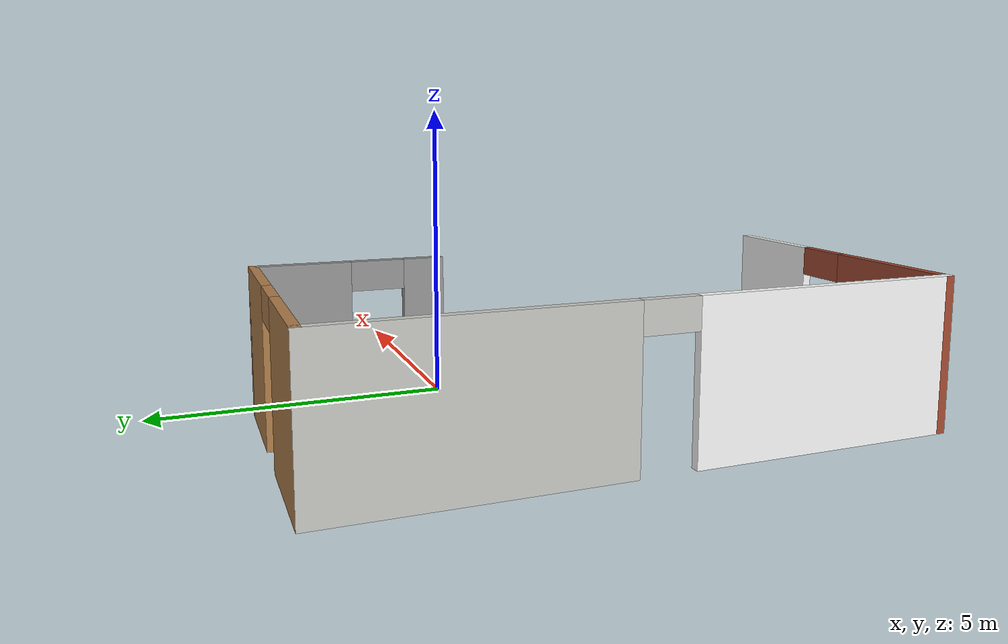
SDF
<?xml version='1.0'?>
<sdf version='1.7'>
  <model name='add_wall2'>
    <pose>-2.43 -1.735 0 0 -0 0</pose>
    <link name='Wall_3'>
      <pose>0 -4.925 0 0 -0 3.14159</pose>
      <visual name='Wall_3_Visual_0'>
        <pose>-1.66285 0 1.25 0 -0 0</pose>
        <geometry>
          <box>
            <size>1.92429 0.15 2.5</size>
          </box>
        </geometry>
        <material>
          <script>
            <uri>model://add_wall2/materials/scripts</uri>
            <uri>model://add_wall2/materials/textures</uri>
            <name>add_wall2/Image </name>
          </script>
          <ambient>1 1 1 1</ambient>
        </material>
        <meta>
          <layer>0</layer>
        </meta>
      </visual>
      <collision name='Wall_3_Collision_0'>
        <geometry>
          <box>
            <size>1.92429 0.15 2.5</size>
          </box>
        </geometry>
        <pose>-1.66285 0 1.25 0 -0 0</pose>
      </collision>
      <visual name='Wall_3_Visual_1'>
        <pose>1.41215 0 1.25 0 -0 0</pose>
        <geometry>
          <box>
            <size>2.42571 0.15 2.5</size>
          </box>
        </geometry>
        <material>
          <script>
            <uri>file://media/materials/scripts/gazebo.material</uri>
            <name>Gazebo/Bricks</name>
          </script>
          <ambient>1 1 1 1</ambient>
        </material>
        <meta>
          <layer>0</layer>
        </meta>
      </visual>
      <collision name='Wall_3_Collision_1'>
        <geometry>
          <box>
            <size>2.42571 0.15 2.5</size>
          </box>
        </geometry>
        <pose>1.41215 0 1.25 0 -0 0</pose>
      </collision>
      <visual name='Wall_3_Visual_2'>
        <pose>-0.250708 0 2.25 0 -0 0</pose>
        <geometry>
          <box>
            <size>0.9 0.15 0.5</size>
          </box>
        </geometry>
        <material>
          <script>
            <uri>file://media/materials/scripts/gazebo.material</uri>
            <name>Gazebo/Bricks</name>
          </script>
          <ambient>1 1 1 1</ambient>
        </material>
        <meta>
          <layer>0</layer>
        </meta>
      </visual>
      <collision name='Wall_3_Collision_2'>
        <geometry>
          <box>
            <size>0.9 0.15 0.5</size>
          </box>
        </geometry>
        <pose>-0.250708 0 2.25 0 -0 0</pose>
      </collision>
    </link>
    <link name='Wall_4'>
      <pose>-2.55 0 0 0 -0 1.5708</pose>
      <visual name='Wall_4_Visual_0'>
        <pose>-2.76483 0 1.25 0 -0 0</pose>
        <geometry>
          <box>
            <size>4.47035 0.15 2.5</size>
          </box>
        </geometry>
        <material>
          <script>
            <uri>model://add_wall2/materials/scripts</uri>
            <uri>model://add_wall2/materials/textures</uri>
            <name>horse/Image </name>
          </script>
          <ambient>1 1 1 1</ambient>
        </material>
        <meta>
          <layer>0</layer>
        </meta>
      </visual>
      <collision name='Wall_4_Collision_0'>
        <geometry>
          <box>
            <size>4.47035 0.15 2.5</size>
          </box>
        </geometry>
        <pose>-2.76483 0 1.25 0 -0 0</pose>
      </collision>
      <visual name='Wall_4_Visual_1'>
        <pose>2.68517 0 1.25 0 -0 0</pose>
        <geometry>
          <box>
            <size>4.62965 0.15 2.5</size>
          </box>
        </geometry>
        <material>
          <script>
            <uri>file://media/materials/scripts/gazebo.material</uri>
            <name>Gazebo/CeilingTiled</name>
          </script>
          <ambient>1 1 1 1</ambient>
        </material>
        <meta>
          <layer>0</layer>
        </meta>
      </visual>
      <collision name='Wall_4_Collision_1'>
        <geometry>
          <box>
            <size>4.62965 0.15 2.5</size>
          </box>
        </geometry>
        <pose>2.68517 0 1.25 0 -0 0</pose>
      </collision>
      <visual name='Wall_4_Visual_2'>
        <pose>-0.079655 0 2.25 0 -0 0</pose>
        <geometry>
          <box>
            <size>0.9 0.15 0.5</size>
          </box>
        </geometry>
        <material>
          <script>
            <uri>file://media/materials/scripts/gazebo.material</uri>
            <name>Gazebo/CeilingTiled</name>
          </script>
          <ambient>1 1 1 1</ambient>
        </material>
        <meta>
          <layer>0</layer>
        </meta>
      </visual>
      <collision name='Wall_4_Collision_2'>
        <geometry>
          <box>
            <size>0.9 0.15 0.5</size>
          </box>
        </geometry>
        <pose>-0.079655 0 2.25 0 -0 0</pose>
      </collision>
    </link>
    <link name='Wall_5'>
      <pose>-0.25 4.925 0 0 -0 0</pose>
      <visual name='Wall_5_Visual_0'>
        <pose>-1.38036 0 1.25 0 -0 0</pose>
        <geometry>
          <box>
            <size>1.98928 0.15 2.5</size>
          </box>
        </geometry>
        <material>
          <script>
            <uri>file://media/materials/scripts/gazebo.material</uri>
            <name>Gazebo/Wood</name>
          </script>
          <ambient>1 1 1 1</ambient>
        </material>
        <meta>
          <layer>0</layer>
        </meta>
      </visual>
      <collision name='Wall_5_Collision_0'>
        <geometry>
          <box>
            <size>1.98928 0.15 2.5</size>
          </box>
        </geometry>
        <pose>-1.38036 0 1.25 0 -0 0</pose>
      </collision>
      <visual name='Wall_5_Visual_1'>
        <pose>1.44464 0 1.25 0 -0 0</pose>
        <geometry>
          <box>
            <size>1.86072 0.15 2.5</size>
          </box>
        </geometry>
        <material>
          <script>
            <uri>file://media/materials/scripts/gazebo.material</uri>
            <name>Gazebo/Wood</name>
          </script>
          <ambient>1 1 1 1</ambient>
        </material>
        <meta>
          <layer>0</layer>
        </meta>
      </visual>
      <collision name='Wall_5_Collision_1'>
        <geometry>
          <box>
            <size>1.86072 0.15 2.5</size>
          </box>
        </geometry>
        <pose>1.44464 0 1.25 0 -0 0</pose>
      </collision>
      <visual name='Wall_5_Visual_2'>
        <pose>0.064283 0 2.25 0 -0 0</pose>
        <geometry>
          <box>
            <size>0.9 0.15 0.5</size>
          </box>
        </geometry>
        <material>
          <script>
            <uri>file://media/materials/scripts/gazebo.material</uri>
            <name>Gazebo/Wood</name>
          </script>
          <ambient>1 1 1 1</ambient>
        </material>
        <meta>
          <layer>0</layer>
        </meta>
      </visual>
      <collision name='Wall_5_Collision_2'>
        <geometry>
          <box>
            <size>0.9 0.15 0.5</size>
          </box>
        </geometry>
        <pose>0.064283 0 2.25 0 -0 0</pose>
      </collision>
    </link>
    <link name='Wall_6'>
      <pose>2.05 3.375 0 0 -0 -1.5708</pose>
      <visual name='Wall_6_Visual_0'>
        <pose>-0.797985 0 1.25 0 -0 0</pose>
        <geometry>
          <box>
            <size>1.65403 0.15 2.5</size>
          </box>
        </geometry>
        <material>
          <script>
            <uri>file://media/materials/scripts/gazebo.material</uri>
            <name>Gazebo/Grey</name>
          </script>
          <ambient>1 1 1 1</ambient>
        </material>
        <meta>
          <layer>0</layer>
        </meta>
      </visual>
      <collision name='Wall_6_Collision_0'>
        <geometry>
          <box>
            <size>1.65403 0.15 2.5</size>
          </box>
        </geometry>
        <pose>-0.797985 0 1.25 0 -0 0</pose>
      </collision>
      <visual name='Wall_6_Visual_1'>
        <pose>1.27702 0 1.25 0 -0 0</pose>
        <geometry>
          <box>
            <size>0.69597 0.15 2.5</size>
          </box>
        </geometry>
        <material>
          <script>
            <uri>file://media/materials/scripts/gazebo.material</uri>
            <name>Gazebo/Grey</name>
          </script>
          <ambient>1 1 1 1</ambient>
        </material>
        <meta>
          <layer>0</layer>
        </meta>
      </visual>
      <collision name='Wall_6_Collision_1'>
        <geometry>
          <box>
            <size>0.69597 0.15 2.5</size>
          </box>
        </geometry>
        <pose>1.27702 0 1.25 0 -0 0</pose>
      </collision>
      <visual name='Wall_6_Visual_2'>
        <pose>0.47903 0 2.25 0 -0 0</pose>
        <geometry>
          <box>
            <size>0.9 0.15 0.5</size>
          </box>
        </geometry>
        <material>
          <script>
            <uri>file://media/materials/scripts/gazebo.material</uri>
            <name>Gazebo/Grey</name>
          </script>
          <ambient>1 1 1 1</ambient>
        </material>
        <meta>
          <layer>0</layer>
        </meta>
      </visual>
      <collision name='Wall_6_Collision_2'>
        <geometry>
          <box>
            <size>0.9 0.15 0.5</size>
          </box>
        </geometry>
        <pose>0.47903 0 2.25 0 -0 0</pose>
      </collision>
    </link>
    <static>1</static>
  </model>
</sdf>
